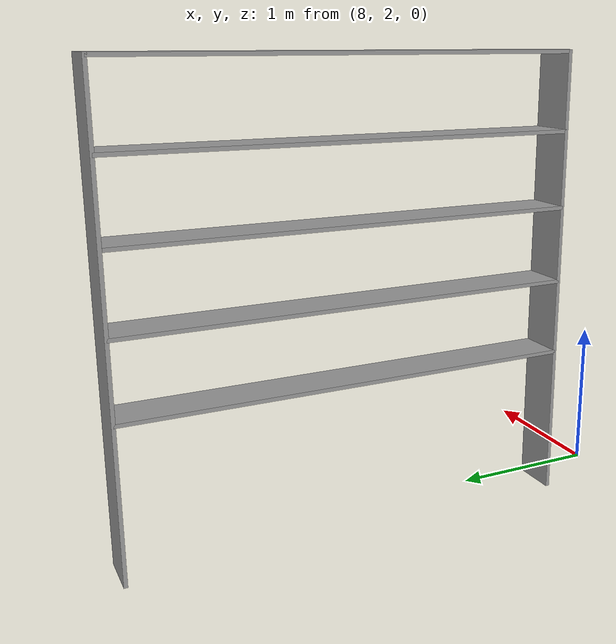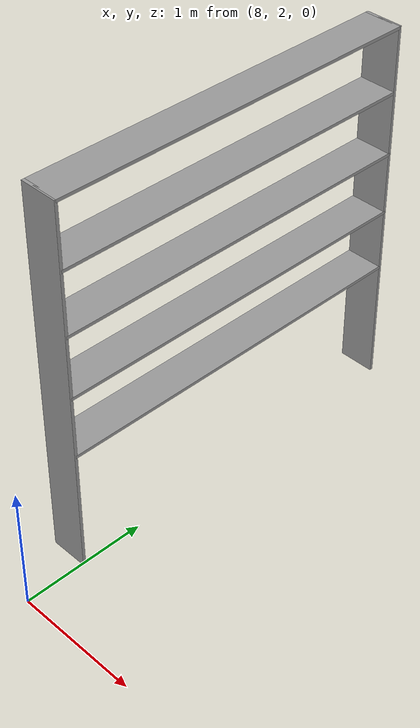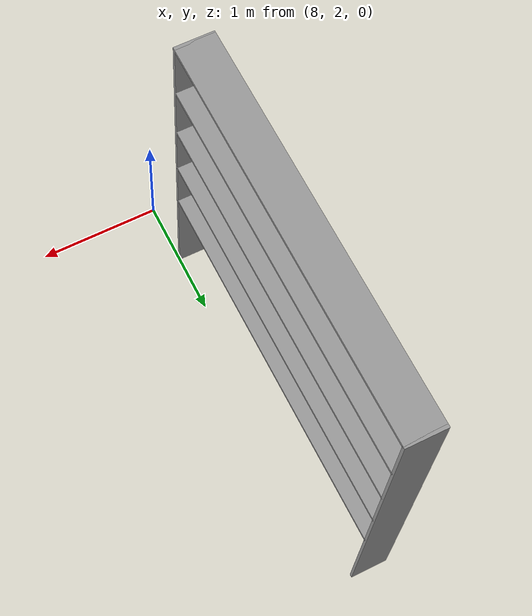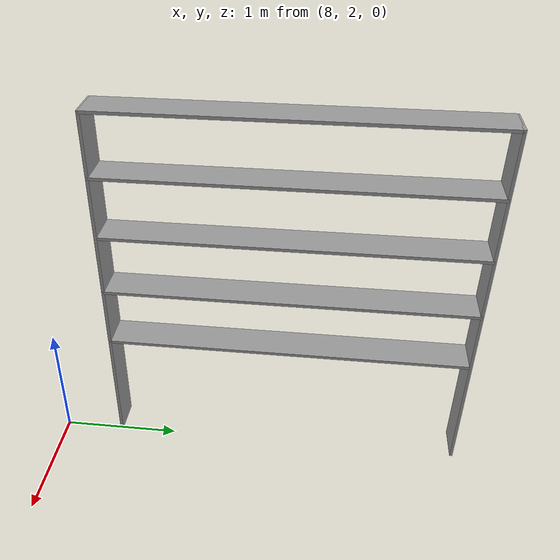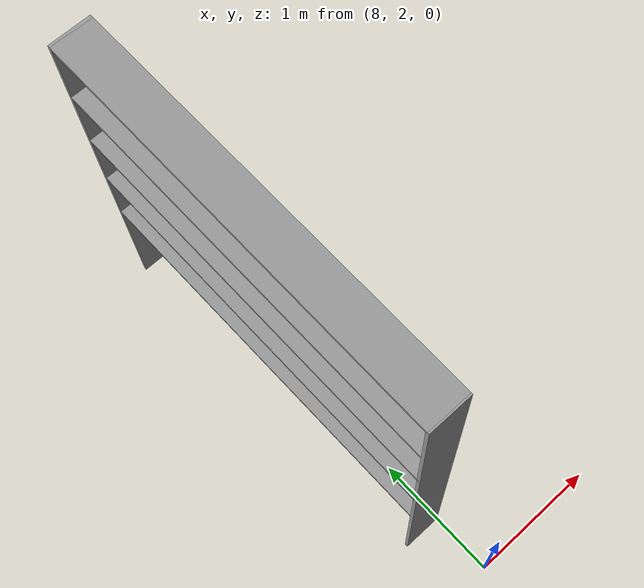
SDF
<?xml version='1.0' encoding='utf-8'?>
<sdf version='1.10'>
<model name='estante'>
  <pose>7.85 4 1.5 0 0 0</pose>
  <link name='link'>

    <collision name='shelf1_collision'>
      <pose>0 0 -0.5 0 0 0</pose>
      <geometry>
        <box>
          <size>0.3 3 0.025</size>
        </box>
      </geometry>
    </collision>
    <collision name='shelf2_collision'>
      <pose>0 0 0 0 0 0</pose>
      <geometry>
        <box>
          <size>0.3 3 0.025</size>
        </box>
      </geometry>
    </collision>
    <collision name='shelf3_collision'>
      <pose>0 0 0.5 0 0 0</pose>
      <geometry>
        <box>
          <size>0.3 3 0.025</size>
        </box>
      </geometry>
    </collision>
    <collision name='shelf4_collision'>
      <pose>0 0 1 0 0 0</pose>
      <geometry>
        <box>
          <size>0.3 3 0.025</size>
        </box>
      </geometry>
    </collision>
    <collision name='shelf5_collision'>
      <pose>0 0 1.5 0 0 0</pose>
      <geometry>
        <box>
          <size>0.3 3 0.025</size>
        </box>
      </geometry>
    </collision>
    <collision name='side1_collision'>
      <pose>0 -1.5 0 0 0 0</pose>
      <geometry>
        <box>
          <size>0.3 0.025 3.025</size>
        </box>
      </geometry>
    </collision>
    <collision name='side2_collision'>
      <pose>0 1.5 0 0 0 0</pose>
      <geometry>
        <box>
          <size>0.3 0.025 3.025</size>
        </box>
      </geometry>
    </collision>

    <visual name='shelf1'>
      <pose>0 0 -0.5 0 0 0</pose>
      <geometry>
        <box>
          <size>0.3 3 0.025</size>
        </box>
      </geometry>
      <material>
        <ambient>0.6 0.6 0.6 1.0</ambient> <!-- Light grey -->
        <diffuse>0.6 0.6 0.6 1.0</diffuse>
        <specular>0.2 0.2 0.2 1.0</specular>
      </material>
    </visual>
    <visual name='shelf2'>
      <pose>0 0 0 0 0 0</pose>
      <geometry>
        <box>
          <size>0.3 3 0.025</size>
        </box>
      </geometry>
      <material>
        <ambient>0.6 0.6 0.6 1.0</ambient> <!-- Light grey -->
        <diffuse>0.6 0.6 0.6 1.0</diffuse>
        <specular>0.2 0.2 0.2 1.0</specular>
      </material>
    </visual>
    <visual name='shelf3'>
      <pose>0 0 0.5 0 0 0</pose>
      <geometry>
        <box>
          <size>0.3 3 0.025</size>
        </box>
      </geometry>
      <material>
        <ambient>0.6 0.6 0.6 1.0</ambient> <!-- Light grey -->
        <diffuse>0.6 0.6 0.6 1.0</diffuse>
        <specular>0.2 0.2 0.2 1.0</specular>
      </material>
    </visual>
    <visual name='shelf4'>
      <pose>0 0 1 0 0 0</pose>
      <geometry>
        <box>
          <size>0.3 3 0.025</size>
        </box>
      </geometry>
      <material>
        <ambient>0.6 0.6 0.6 1.0</ambient> <!-- Light grey -->
        <diffuse>0.6 0.6 0.6 1.0</diffuse>
        <specular>0.2 0.2 0.2 1.0</specular>
      </material>
    </visual>
    <visual name='shelf5'>
      <pose>0 0 1.5 0 0 0</pose>
      <geometry>
        <box>
          <size>0.3 3 0.025</size>
        </box>
      </geometry>
      <material>
        <ambient>0.6 0.6 0.6 1.0</ambient> <!-- Light grey -->
        <diffuse>0.6 0.6 0.6 1.0</diffuse>
        <specular>0.2 0.2 0.2 1.0</specular>
      </material>
    </visual>
    <visual name='side1'>
      <pose>0 -1.5 0 0 0 0</pose>
      <geometry>
        <box>
          <size>0.3 0.025 3.025</size>
        </box>
      </geometry>
      <material>
        <ambient>0.6 0.6 0.6 1.0</ambient> <!-- Light grey -->
        <diffuse>0.6 0.6 0.6 1.0</diffuse>
        <specular>0.2 0.2 0.2 1.0</specular>
      </material>
    </visual>
    <visual name='side2'>
      <pose>0 1.5 0 0 0 0</pose>
      <geometry>
        <box>
          <size>0.3 0.025 3.025</size>
        </box>
      </geometry>
      <material>
        <ambient>0.6 0.6 0.6 1.0</ambient> <!-- Light grey -->
        <diffuse>0.6 0.6 0.6 1.0</diffuse>
        <specular>0.2 0.2 0.2 1.0</specular>
      </material>
    </visual>
    <pose>0 0 0 0 0 0</pose>
    <enable_wind>false</enable_wind>
  </link>
  <static>true</static>
  <self_collide>false</self_collide>
</model>
</sdf>
